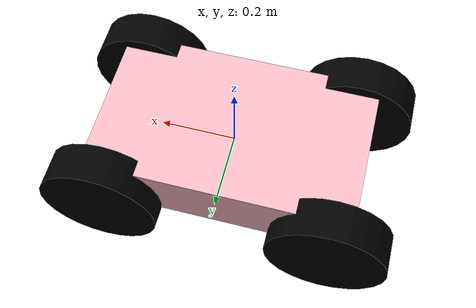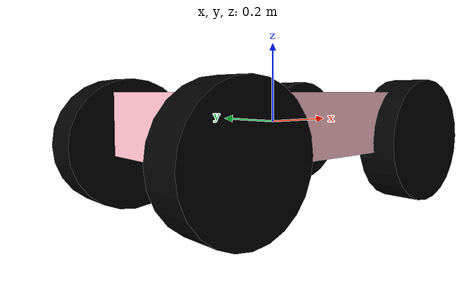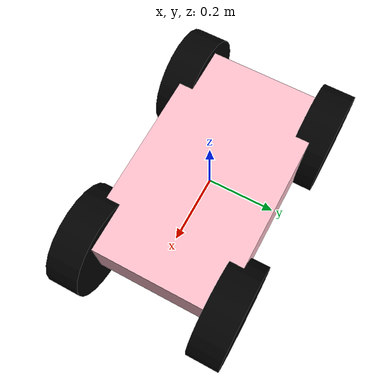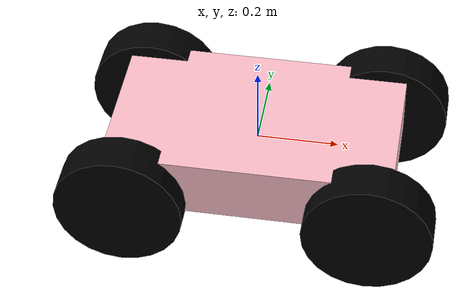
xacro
<?xml version="1.0"?>
<!-- Sim URDF: roseybot_control stack drives everything, Gazebo visualizes via gz_ros2_control -->
<robot xmlns:xacro="http://www.ros.org/wiki/xacro" name="roseybot">

    <!-- Tell the ros2_control xacro to use gz_ros2_control/GazeboSimSystem -->
    <xacro:arg name="use_sim" default="true"/>

    <!-- Robot links and joints -->
    <xacro:include filename="$(find roseybot_control)/description/robot/roseybot_colors.urdf.xacro" />
    <xacro:include filename="$(find roseybot_control)/description/robot/roseybot_description.urdf.xacro"/>

    <!-- ros2_control hardware section (uses GazeboSimSystem when use_sim=true) -->
    <xacro:include filename="$(find roseybot_control)/description/ros2_control/roseybot_control.urdf.xacro" />

    <!-- IMU link and Gazebo sensor -->
    <link name="imu_link"/>
    <joint name="imu_joint" type="fixed">
        <parent link="base_link"/>
        <child link="imu_link"/>
        <origin xyz="0 0 0.05" rpy="0 0 0"/>
    </joint>
    <gazebo reference="imu_link">
        <sensor name="imu_sensor" type="imu">
            <always_on>1</always_on>
            <update_rate>100</update_rate>
            <visualize>true</visualize>
            <topic>imu</topic>
            <imu>
                <angular_velocity>
                    <x><noise type="gaussian"><mean>0.0</mean><stddev>2e-4</stddev></noise></x>
                    <y><noise type="gaussian"><mean>0.0</mean><stddev>2e-4</stddev></noise></y>
                    <z><noise type="gaussian"><mean>0.0</mean><stddev>2e-4</stddev></noise></z>
                </angular_velocity>
                <linear_acceleration>
                    <x><noise type="gaussian"><mean>0.0</mean><stddev>1.7e-2</stddev></noise></x>
                    <y><noise type="gaussian"><mean>0.0</mean><stddev>1.7e-2</stddev></noise></y>
                    <z><noise type="gaussian"><mean>0.0</mean><stddev>1.7e-2</stddev></noise></z>
                </linear_acceleration>
            </imu>
        </sensor>
    </gazebo>

    <!-- gz_ros2_control Gazebo plugin — starts the controller manager inside Gazebo
         and connects roseybot_control's controllers to Gazebo's joint physics -->
    <gazebo>
        <plugin filename="gz_ros2_control-system" name="gz_ros2_control::GazeboSimROS2ControlPlugin">
            <parameters>$(find roseybot_control)/bringup/config/roseybot_controllers_sim.yaml</parameters>
            <ros>
                <!-- remap DiffDriveController's input to the global /cmd_vel -->
                <remapping>/roseybot_base_controller/cmd_vel:=/cmd_vel</remapping>
                <parameter name="use_sim_time">true</parameter>
            </ros>
        </plugin>
    </gazebo>

    <!-- Pose publisher (used by bridge for /CubeRover_V1/pose) -->
    <gazebo>
        <plugin filename="gz-sim-pose-publisher-system" name="gz::sim::systems::PosePublisher">
            <publish_model_pose>true</publish_model_pose>
            <publish_link_pose>false</publish_link_pose>
            <publish_nested_model_pose>true</publish_nested_model_pose>
            <use_pose_vector_msg>false</use_pose_vector_msg>
            <update_frequency>200</update_frequency>
        </plugin>
    </gazebo>

    <!-- Wheel friction coefficients -->
    <gazebo reference="front_left_wheel_link">
        <collision><surface><friction><ode>
            <mu>5.0</mu><mu2>5.0</mu2>
        </ode></friction></surface></collision>
    </gazebo>
    <gazebo reference="front_right_wheel_link">
        <collision><surface><friction><ode>
            <mu>5.0</mu><mu2>5.0</mu2>
        </ode></friction></surface></collision>
    </gazebo>
    <gazebo reference="back_left_wheel_link">
        <collision><surface><friction><ode>
            <mu>5.0</mu><mu2>5.0</mu2>
        </ode></friction></surface></collision>
    </gazebo>
    <gazebo reference="back_right_wheel_link">
        <collision><surface><friction><ode>
            <mu>5.0</mu><mu2>5.0</mu2>
        </ode></friction></surface></collision>
    </gazebo>

</robot>

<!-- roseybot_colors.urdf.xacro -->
<!--
Copied from ROS2 Control Demo:
https://github.com/ros-controls/ros2_control_demos/blob/master/ros2_control_demo_description/diffbot/urdf/diffbot.materials.xacro
-->
<robot>

  <material name="black">
    <color rgba="0.0 0.0 0.0 1.0"/>
  </material>

  <material name="blue">
    <color rgba="0.0 0.0 0.8 1.0"/>
  </material>

  <material name="green">
    <color rgba="0.0 0.8 0.0 1.0"/>
  </material>

  <material name="grey">
    <color rgba="0.2 0.2 0.2 1.0"/>
  </material>

  <material name="orange">
    <color rgba="${255/255} ${108/255} ${10/255} 1.0"/>
  </material>

  <material name="brown">
    <color rgba="${222/255} ${207/255} ${195/255} 1.0"/>
  </material>

  <material name="red">
    <color rgba="0.8 0.0 0.0 1.0"/>
  </material>

  <material name="white">
    <color rgba="1.0 1.0 1.0 1.0"/>
  </material>

  <material name="pink">
    <color rgba= "${255/192} ${192/255} ${203/255} 1.0"/>
  </material>

</robot>

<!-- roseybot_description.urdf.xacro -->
<!-- RoseyBot Robot Description File -->
<robot xmlns:xacro="http://www.ros.org/wiki/xacro">

    <!-- properties for robot dimensions (in m)-->
    <xacro:property name="base_width" value="0.422"/>
    <xacro:property name="base_length" value="0.703"/>
    <xacro:property name="base_height" value="0.15"/>
    <xacro:property name="wheel_track" value="0.3365"/>  <!-- center-to-center wheel separation, must match roseybot_controllers.yaml wheel_separation -->
    <xacro:property name="wheel_radius" value="0.158"/>
    <xacro:property name="wheel_length" value="0.1"/>
    <xacro:property name="z_offset" value="0.05"/>
    <xacro:property name="x_offset" value="0.05"/>
    <xacro:property name="base_mass" value="12"/>
    <xacro:property name="wheel_mass" value="0.5"/>

    <!-- Define inertial property macros  -->
    <xacro:macro name="box_inertia" params="m w h d">
        <inertial>
        <origin xyz="0 0 0" rpy="${pi/2} 0 ${pi/2}"/>
        <mass value="${m}"/>
        <inertia ixx="${(m/12) * (h*h + d*d)}" ixy="0.0" ixz="0.0" iyy="${(m/12) * (w*w + d*d)}" iyz="0.0" izz="${(m/12) * (w*w + h*h)}"/>
        </inertial>
    </xacro:macro>

    <xacro:macro name="cylinder_inertia" params="m r h">
        <inertial>
        <origin xyz="0 0 0" rpy="${pi/2} 0 0" />
        <mass value="${m}"/>
        <inertia ixx="${(m/12) * (3*r*r + h*h)}" ixy = "0" ixz = "0" iyy="${(m/12) * (3*r*r + h*h)}" iyz = "0" izz="${(m/2) * (r*r)}"/>
        </inertial>
    </xacro:macro>

    <!-- define base link for rover (Primary Parent Link)-->
    <link name="base_link">
        <collision>
            <origin xyz="0 0 0" rpy= "0 0 0"/>
            <geometry>
                <box size="${base_length} ${base_width} ${base_height}"/>
            </geometry>
        </collision>

        <visual>
            <origin xyz="0 0 0" rpy="0 0 0"/>
            <geometry>
                <box size = "${base_length} ${base_width} ${base_height}"/>
            </geometry>
            <material name="pink"/>
        </visual>

        <xacro:box_inertia m ="${base_mass}" w="${base_width}" d="${base_length}" h="${base_height}"/>
    </link>

    <!-- define footprint of rover-->
    <link name="base_footprint"/>

    <joint name="base_joint" type="fixed">
        <parent link="base_link"/>
        <child link="base_footprint"/>
        <origin xyz="0 0 ${- (z_offset + wheel_radius) }"/>
    </joint>

    <!-- set up macro for wheel definitions -->
    <xacro:macro name="wheel" params="prefix x_reflect y_reflect">
        <joint name="${prefix}_wheel_joint" type="continuous">
            <parent link="base_link"/>
            <child link="${prefix}_wheel_link"/>
            <origin xyz="${x_reflect * ((base_length/2) - x_offset)} ${y_reflect * wheel_track/2} ${-z_offset}" rpy= "0 0 0"/>
            <axis xyz = "0 1 0"/>
        </joint>

        <link name="${prefix}_wheel_link">
            <collision>
                <origin xyz="0 ${wheel_length/2} 0" rpy= "${pi/2} 0 0"/>
                <geometry>
                    <cylinder radius="${wheel_radius}" length="${wheel_length}"/>
                </geometry>
            </collision>

            <visual>
                <origin xyz="0 ${y_reflect * wheel_length/2} 0" rpy="${pi/2} 0 0"/>
                <geometry>
                    <cylinder radius="${wheel_radius}" length="${wheel_length}"/>
                </geometry>
                <material name="black"/>
            </visual>

            <xacro:cylinder_inertia m="${wheel_mass}" r="${wheel_radius}" h="${wheel_length}"/>
        </link>
    </xacro:macro>

    <!-- call macros to define wheels-->
    <xacro:wheel prefix="front_left" x_reflect="1" y_reflect="1"/>
    <xacro:wheel prefix="front_right" x_reflect="1" y_reflect="-1"/>
    <xacro:wheel prefix="back_left" x_reflect="-1" y_reflect="1"/>
    <xacro:wheel prefix="back_right" x_reflect="-1" y_reflect="-1"/>

</robot>
